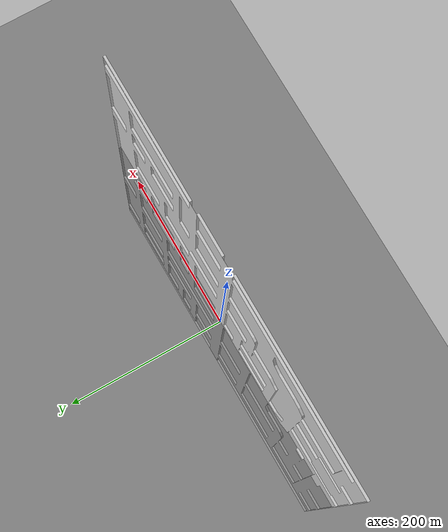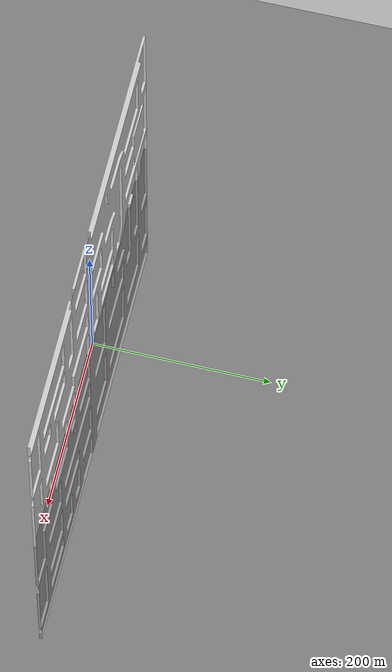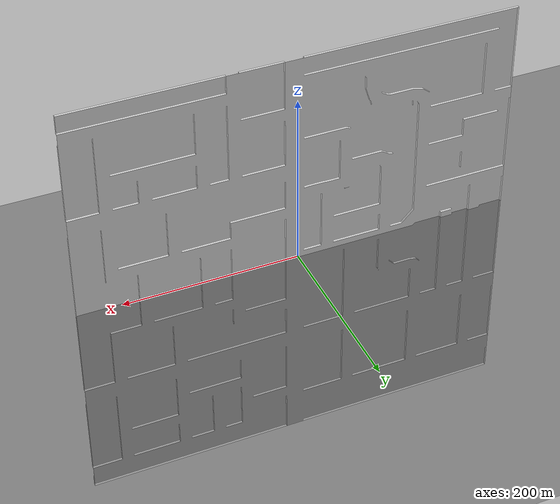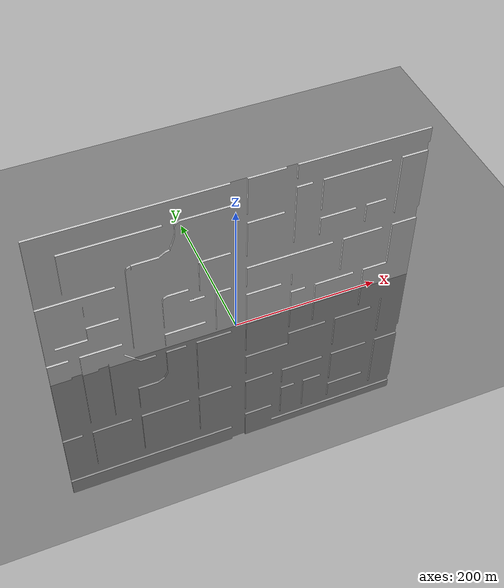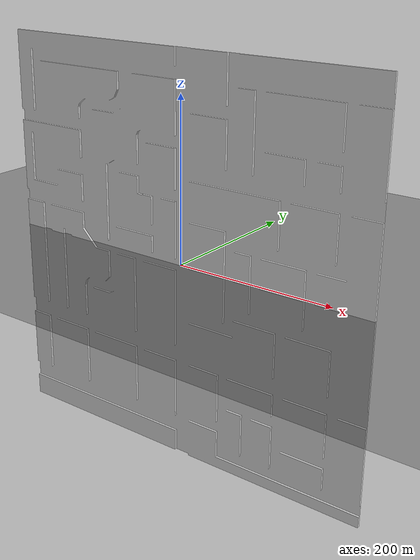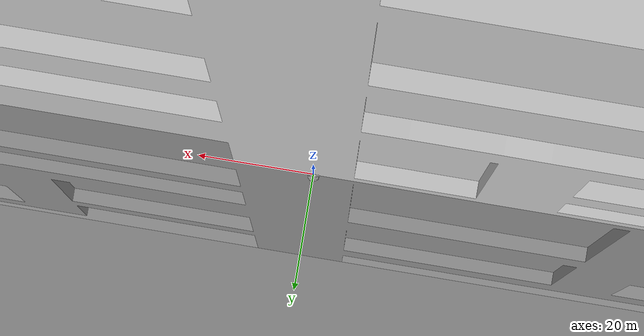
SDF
<?xml version="1.0"?>

<sdf version="1.9">
<world name="taxi_navigation_city_large_harmonic">
    <physics name="4ms" type="ignored">
        <max_step_size>0.004</max_step_size>
        <real_time_factor>1.0</real_time_factor>
    </physics>
    <plugin
        filename="gz-sim-physics-system"
        name="gz::sim::systems::Physics">
    </plugin>
    <plugin
        filename="gz-sim-scene-broadcaster-system"
        name="gz::sim::systems::SceneBroadcaster">
    </plugin>
    <plugin
        filename="gz-sim-user-commands-system"
        name="gz::sim::systems::UserCommands">
    </plugin>
    <plugin
        filename="gz-sim-sensors-system"
        name="gz::sim::systems::Sensors">
        <render_engine>ogre2</render_engine>
    </plugin>

    <gui fullscreen="0">
      <!-- 3D scene -->
      <plugin filename="MinimalScene" name="3D View">
          <gz-gui>
              <title>3D View</title>
              <property type="bool" key="showTitleBar">false</property>
              <property type="string" key="state">docked</property>
          </gz-gui>

          <engine>ogre2</engine>
          <scene>scene</scene>
          <ambient_light>1.0 1.0 1.0</ambient_light>
          <background_color>0.4 0.6 1.0</background_color>
          <camera_pose>53.5 -8.0 1.5 0 0 -1.57</camera_pose>
      </plugin>

      <plugin filename="InteractiveViewControl" name="Interactive view control">
          <gz-gui>
          <property key="resizable" type="bool">false</property>
          <property key="width" type="double">5</property>
          <property key="height" type="double">5</property>
          <property key="state" type="string">floating</property>
          <property key="showTitleBar" type="bool">false</property>
          </gz-gui>
      </plugin>

      <plugin filename="GzSceneManager" name="Scene Manager">
          <gz-gui>
          <property key="resizable" type="bool">false</property>
          <property key="width" type="double">5</property>
          <property key="height" type="double">5</property>
          <property key="state" type="string">floating</property>
          <property key="showTitleBar" type="bool">false</property>
          </gz-gui>
      </plugin>

      <!-- World control -->
      <plugin filename="WorldControl" name="World control">
          <gz-gui>
          <title>World control</title>
          <property type="bool" key="showTitleBar">false</property>
          <property type="bool" key="resizable">false</property>
          <property type="double" key="height">72</property>
          <property type="double" key="z">1</property>

          <property type="string" key="state">floating</property>
          <anchors target="3D View">
              <line own="left" target="left"/>
              <line own="bottom" target="bottom"/>
          </anchors>
          </gz-gui>

          <play_pause>true</play_pause>
          <step>true</step>
          <start_paused>true</start_paused>
          <use_event>true</use_event>

      </plugin>
      <camera name='user_camera'>
        <pose>0 0 80 3.14 1.5529944 0</pose>
        <view_controller>orbit</view_controller>
        <projection_type>perspective</projection_type>
      </camera>
    </gui>

    <light type="directional"
      name="sun">
      <cast_shadows>true</cast_shadows>
      <pose>0 0 10 0 0 0</pose>
      <diffuse>0.8 0.8 0.8 1</diffuse>
      <specular>0.2 0.2 0.2 1</specular>
      <attenuation>
          <range>1000</range>
          <constant>0.9</constant>
          <linear>0.01</linear>
          <quadratic>0.001</quadratic>
      </attenuation>
      <direction>-0.5 0.1 -0.9</direction>
    </light>

    <!-- Black Ground Plane -->
    <model name="ground_plane">
        <static>true</static>
        <link name="link">
            <collision name="collision">
                <geometry>
                    <plane>
                        <normal>0 0 1</normal>
                        <size>1000 1000</size>
                    </plane>
                </geometry>
            </collision>
            <visual name="visual">
                <geometry>
                    <plane>
                        <normal>0 0 1</normal>
                        <size>1000 1000</size>
                    </plane>
                </geometry>
                <material>
                    <ambient>0.1 0.1 0.1 1</ambient>
                    <diffuse>0.1 0.1 0.1 1</diffuse>
                    <specular>0.1 0.1 0.1 1</specular>
                </material>
            </visual>
        </link>
    </model>
    <!-- My city -->
    <include>
        <pose>0 0 -0.5 0 0 0</pose>
        <uri>model://cityLarge_harmonic</uri>
    </include>
    <!-- My robots -->
    <include>
        <pose>0 0 0 1.5708 0 -1.5529944</pose>
        <uri>model://taxi_holo_ROS_harmonic</uri>
    </include>

	</world>
</sdf>

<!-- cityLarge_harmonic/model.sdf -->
<sdf version="1.9">
    <model name="cityLarge_harmonic">
        <pose>0 0 0 0 0 0</pose>
        <static>true</static>

        <link name="city">
            <pose>0 0 0 0 0 0</pose>

            <collision name="collision">
                <pose>0 0 0 1.5708 0 0</pose>
                <geometry>
                    <mesh>
                        <uri>model://cityLarge_harmonic/meshes/city.dae</uri>
                        <scale>1 1 1</scale>
                    </mesh>
                </geometry>
                <surface>
                    <contact>
                        <collide_without_contact>false</collide_without_contact>
                        <collide_without_contact_bitmask>1</collide_without_contact_bitmask>
                    </contact>
                    <friction>
                        <ode>
                            <mu>1.0</mu>
                            <mu2>1.0</mu2>
                        </ode>
                    </friction>
                </surface>
            </collision>

            <visual name="visual">
                <pose>0 0 0 1.5708 0 0</pose>
                <geometry>
                    <mesh>
                        <uri>model://cityLarge_harmonic/meshes/city.dae</uri>
                        <scale>1 1 1</scale>
                    </mesh>
                </geometry>
                <material>
                    <ambient>0.8 0.8 0.8 1.0</ambient>
                    <diffuse>0.8 0.8 0.8 1.0</diffuse>
                    <specular>0.1 0.1 0.1 1.0</specular>
                </material>
            </visual>

            <inertial>
                <mass>1000.0</mass>
                <inertia>
                    <ixx>1.0</ixx>
                    <ixy>0.0</ixy>
                    <ixz>0.0</ixz>
                    <iyy>1.0</iyy>
                    <iyz>0.0</iyz>
                    <izz>1.0</izz>
                </inertia>
            </inertial>
        </link>
    </model>
</sdf>

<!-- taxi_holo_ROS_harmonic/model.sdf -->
<sdf version="1.9">
  <model name="taxi_holo_ROS_harmonic">
    <pose>0 0 0 0 0 0</pose>
    <static>false</static>

    <!-- Chassis link -->
    <link name="taxi_holo">
      <inertial>
        <mass>1.0</mass>
        <inertia>
          <ixx>1</ixx><ixy>0.0</ixy><ixz>0.0</ixz>
          <iyy>1</iyy><iyz>0.0</iyz>
          <izz>1</izz>
        </inertia>
      </inertial>

      <!-- collision & visual both use the same mesh -->
      <collision name="collision">
        <pose>0 0 0 0 0 1.57 </pose>
        <geometry>
          <mesh>
            <uri>model://taxi_holo_ROS_harmonic/meshes/taxi_holo.obj</uri>
          </mesh>
        </geometry>
      </collision>
      <visual name="visual">
        <pose>0 0 0 0 0 1.57 </pose>
        <geometry>
          <mesh>
            <uri>model://taxi_holo_ROS_harmonic/meshes/taxi_holo.obj</uri>
          </mesh>
        </geometry>
      </visual>
    </link>

    <!-- VelocityControl plugin: applies Twist directly to the chassis link -->
    <plugin
      filename="gz-sim-velocity-control-system"
      name="gz::sim::systems::VelocityControl">

      <topic>/taxi_holo/cmd_vel</topic>

    </plugin>

    <plugin
      filename="gz-sim-odometry-publisher-system"
      name="gz::sim::systems::OdometryPublisher">
      <odom_topic>/taxi_holo/odom</odom_topic>
      <robot_base_frame>taxi_holo</robot_base_frame>
      <odom_frame>odom</odom_frame>
      <odom_publish_frequency>20</odom_publish_frequency>
      <dimensions>3</dimensions>
    </plugin>

  </model>
</sdf>
